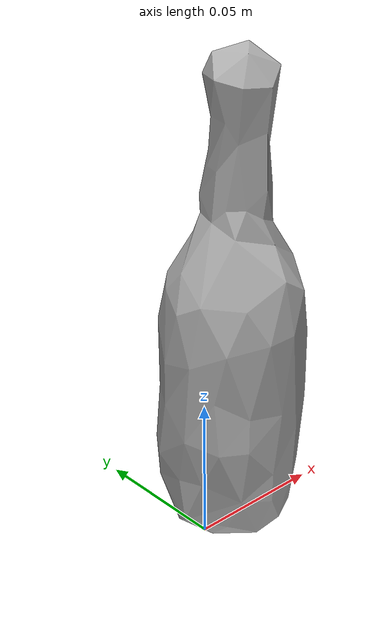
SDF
<?xml version='1.0'?>
<sdf version="1.4">
  <model name="tapatio_hot_sauce">
    <static>false</static>
    <link name="link">
      <inertial>
        <pose>0.005311692566299097 -0.006924715964868298 0.07044052715139709 0.013300552381126058 0.022206716139304097 0.2081531653663797</pose>
        <mass>0.025112114444522552</mass>
        <inertia>
          <ixx>4.652607550524776e-05</ixx>
          <ixy>5.191864839905268e-22</ixy>
          <ixz>8.745318869043021e-23</ixz>
          <iyy>4.644411065058195e-05</iyy>
          <iyz>1.594452480193513e-21</iyz>
          <izz>7.42313724917416e-06</izz>
        </inertia>
      </inertial>
      <collision name="collision">
        <geometry>
          <mesh>
            <!-- Use a downsampled mesh for collisions -->
            <uri>model:///tapatio_hot_sauce/tapatio_hot_sauce_250_collision.obj</uri>
	        </mesh>
        </geometry>
        <surface>
      </surface>
      </collision>
      <visual name="visual">
        <geometry>
          <mesh>
            <uri>model:///tapatio_hot_sauce/optimized_tsdf_texture_mapped_mesh.obj</uri>
	        </mesh>
        </geometry>
        <material>
          <script>
            <uri>model:///tapatio_hot_sauce/tapatio_hot_sauce.material</uri>
            <name>tapatio_hot_sauce</name>
          </script>
        </material>
      </visual>
    </link>
  </model>
</sdf>
